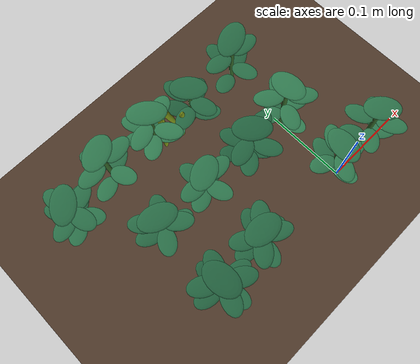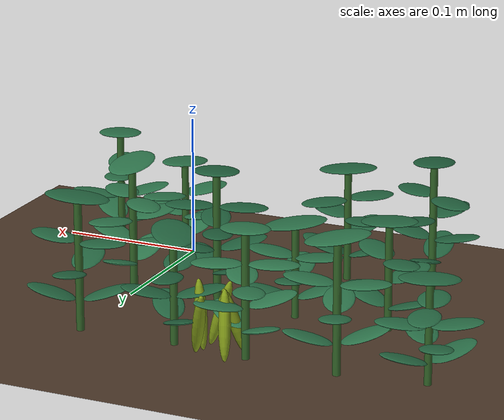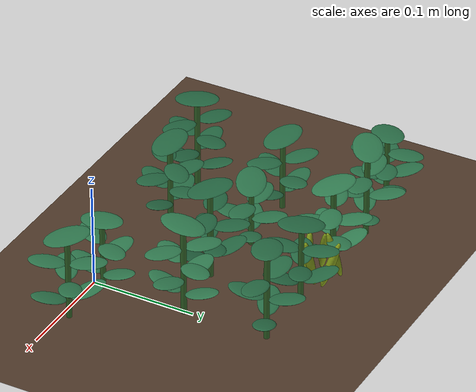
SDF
<sdf version="1.9">
 <world name="jim_field">
  <model name="ground_plane">
   <static>true</static>
   <link name="link">
    <collision name="collision">
     <geometry><plane><normal>0 0 1</normal><size>40 40</size></plane></geometry>
    </collision>
    <visual name="visual">
     <geometry><plane><normal>0 0 1</normal><size>40 40</size></plane></geometry>
     <material>
      <ambient>0.20 0.15 0.11 1</ambient>
      <diffuse>0.30 0.22 0.16 1</diffuse>
      <specular>0.01 0.01 0.01 1</specular>
     </material>
    </visual>
   </link>
  </model>
  <model name="field">
   <static>true</static>
   <pose>0.1837 -0.2516 0 0 0 0</pose>
   <model name="crop_138">
    <static>true</static>
    <pose>-0.3691 0.2538 0 0 0 0</pose>
    <link name="link">
     <visual name="stem">
      <pose>0 0 0.0440 0 0 0</pose>
      <geometry><cylinder><radius>0.0027</radius><length>0.0880</length></cylinder></geometry>
      <material>
       <ambient>0.10 0.22 0.09 1</ambient>
       <diffuse>0.20 0.40 0.16 1</diffuse>
       <specular>0.05 0.06 0.05 1</specular>
      </material>
     </visual>
     <visual name="leaflet_0_0">
      <pose>-0.0020 0.0186 0.0264 0 -0.300 1.6778</pose>
      <geometry><ellipsoid><radii>0.0170 0.0105 0.0016</radii></ellipsoid></geometry>
      <material>
       <ambient>0.070 0.200 0.110 1</ambient>
       <diffuse>0.130 0.380 0.240 1</diffuse>
       <specular>0.05 0.06 0.05 1</specular>
      </material>
     </visual>
     <visual name="leaflet_0_1">
      <pose>0.0020 -0.0186 0.0264 0 -0.300 4.8194</pose>
      <geometry><ellipsoid><radii>0.0170 0.0105 0.0016</radii></ellipsoid></geometry>
      <material>
       <ambient>0.070 0.200 0.110 1</ambient>
       <diffuse>0.130 0.380 0.240 1</diffuse>
       <specular>0.05 0.06 0.05 1</specular>
      </material>
     </visual>
     <visual name="leaflet_1_0">
      <pose>-0.0186 0.0021 0.0401 0 -0.200 3.0278</pose>
      <geometry><ellipsoid><radii>0.0170 0.0105 0.0016</radii></ellipsoid></geometry>
      <material>
       <ambient>0.070 0.200 0.110 1</ambient>
       <diffuse>0.130 0.380 0.240 1</diffuse>
       <specular>0.05 0.06 0.05 1</specular>
      </material>
     </visual>
     <visual name="leaflet_1_1">
      <pose>0.0186 -0.0021 0.0401 0 -0.200 6.1694</pose>
      <geometry><ellipsoid><radii>0.0170 0.0105 0.0016</radii></ellipsoid></geometry>
      <material>
       <ambient>0.070 0.200 0.110 1</ambient>
       <diffuse>0.130 0.380 0.240 1</diffuse>
       <specular>0.05 0.06 0.05 1</specular>
      </material>
     </visual>
     <visual name="leaflet_2_0">
      <pose>-0.0061 -0.0177 0.0537 0 -0.100 4.3778</pose>
      <geometry><ellipsoid><radii>0.0170 0.0105 0.0016</radii></ellipsoid></geometry>
      <material>
       <ambient>0.070 0.200 0.110 1</ambient>
       <diffuse>0.130 0.380 0.240 1</diffuse>
       <specular>0.05 0.06 0.05 1</specular>
      </material>
     </visual>
     <visual name="leaflet_2_1">
      <pose>0.0061 0.0177 0.0537 0 -0.100 7.5194</pose>
      <geometry><ellipsoid><radii>0.0170 0.0105 0.0016</radii></ellipsoid></geometry>
      <material>
       <ambient>0.070 0.200 0.110 1</ambient>
       <diffuse>0.130 0.380 0.240 1</diffuse>
       <specular>0.05 0.06 0.05 1</specular>
      </material>
     </visual>
     <visual name="leaflet_3_0">
      <pose>0.0159 -0.0099 0.0673 0 0.000 5.7278</pose>
      <geometry><ellipsoid><radii>0.0170 0.0105 0.0016</radii></ellipsoid></geometry>
      <material>
       <ambient>0.070 0.200 0.110 1</ambient>
       <diffuse>0.130 0.380 0.240 1</diffuse>
       <specular>0.05 0.06 0.05 1</specular>
      </material>
     </visual>
     <visual name="leaflet_3_1">
      <pose>-0.0159 0.0099 0.0673 0 0.000 8.8694</pose>
      <geometry><ellipsoid><radii>0.0170 0.0105 0.0016</radii></ellipsoid></geometry>
      <material>
       <ambient>0.070 0.200 0.110 1</ambient>
       <diffuse>0.130 0.380 0.240 1</diffuse>
       <specular>0.05 0.06 0.05 1</specular>
      </material>
     </visual>
     <visual name="leaflet_terminal">
      <pose>0 0 0.0920 0 -0.12 1.6778</pose>
      <geometry><ellipsoid><radii>0.0215 0.0140 0.0018</radii></ellipsoid></geometry>
      <material>
       <ambient>0.070 0.200 0.110 1</ambient>
       <diffuse>0.130 0.380 0.240 1</diffuse>
       <specular>0.05 0.06 0.05 1</specular>
      </material>
     </visual>
    </link>
   </model>
   <model name="crop_139">
    <static>true</static>
    <pose>-0.3077 0.2597 0 0 0 0</pose>
    <link name="link">
     <visual name="stem">
      <pose>0 0 0.0387 0 0 0</pose>
      <geometry><cylinder><radius>0.0026</radius><length>0.0774</length></cylinder></geometry>
      <material>
       <ambient>0.10 0.22 0.09 1</ambient>
       <diffuse>0.20 0.40 0.16 1</diffuse>
       <specular>0.05 0.06 0.05 1</specular>
      </material>
     </visual>
     <visual name="leaflet_0_0">
      <pose>-0.0181 0.0012 0.0232 0 -0.300 3.0749</pose>
      <geometry><ellipsoid><radii>0.0170 0.0105 0.0016</radii></ellipsoid></geometry>
      <material>
       <ambient>0.074 0.207 0.116 1</ambient>
       <diffuse>0.139 0.395 0.250 1</diffuse>
       <specular>0.05 0.06 0.05 1</specular>
      </material>
     </visual>
     <visual name="leaflet_0_1">
      <pose>0.0181 -0.0012 0.0232 0 -0.300 6.2165</pose>
      <geometry><ellipsoid><radii>0.0170 0.0105 0.0016</radii></ellipsoid></geometry>
      <material>
       <ambient>0.074 0.207 0.116 1</ambient>
       <diffuse>0.139 0.395 0.250 1</diffuse>
       <specular>0.05 0.06 0.05 1</specular>
      </material>
     </visual>
     <visual name="leaflet_1_0">
      <pose>-0.0051 -0.0174 0.0352 0 -0.200 4.4249</pose>
      <geometry><ellipsoid><radii>0.0170 0.0105 0.0016</radii></ellipsoid></geometry>
      <material>
       <ambient>0.074 0.207 0.116 1</ambient>
       <diffuse>0.139 0.395 0.250 1</diffuse>
       <specular>0.05 0.06 0.05 1</specular>
      </material>
     </visual>
     <visual name="leaflet_1_1">
      <pose>0.0051 0.0174 0.0352 0 -0.200 7.5665</pose>
      <geometry><ellipsoid><radii>0.0170 0.0105 0.0016</radii></ellipsoid></geometry>
      <material>
       <ambient>0.074 0.207 0.116 1</ambient>
       <diffuse>0.139 0.395 0.250 1</diffuse>
       <specular>0.05 0.06 0.05 1</specular>
      </material>
     </visual>
     <visual name="leaflet_2_0">
      <pose>0.0158 -0.0088 0.0472 0 -0.100 5.7749</pose>
      <geometry><ellipsoid><radii>0.0170 0.0105 0.0016</radii></ellipsoid></geometry>
      <material>
       <ambient>0.074 0.207 0.116 1</ambient>
       <diffuse>0.139 0.395 0.250 1</diffuse>
       <specular>0.05 0.06 0.05 1</specular>
      </material>
     </visual>
     <visual name="leaflet_2_1">
      <pose>-0.0158 0.0088 0.0472 0 -0.100 8.9165</pose>
      <geometry><ellipsoid><radii>0.0170 0.0105 0.0016</radii></ellipsoid></geometry>
      <material>
       <ambient>0.074 0.207 0.116 1</ambient>
       <diffuse>0.139 0.395 0.250 1</diffuse>
       <specular>0.05 0.06 0.05 1</specular>
      </material>
     </visual>
     <visual name="leaflet_3_0">
      <pose>0.0121 0.0135 0.0592 0 0.000 7.1249</pose>
      <geometry><ellipsoid><radii>0.0170 0.0105 0.0016</radii></ellipsoid></geometry>
      <material>
       <ambient>0.074 0.207 0.116 1</ambient>
       <diffuse>0.139 0.395 0.250 1</diffuse>
       <specular>0.05 0.06 0.05 1</specular>
      </material>
     </visual>
     <visual name="leaflet_3_1">
      <pose>-0.0121 -0.0135 0.0592 0 0.000 10.2665</pose>
      <geometry><ellipsoid><radii>0.0170 0.0105 0.0016</radii></ellipsoid></geometry>
      <material>
       <ambient>0.074 0.207 0.116 1</ambient>
       <diffuse>0.139 0.395 0.250 1</diffuse>
       <specular>0.05 0.06 0.05 1</specular>
      </material>
     </visual>
     <visual name="leaflet_terminal">
      <pose>0 0 0.0814 0 -0.12 3.0749</pose>
      <geometry><ellipsoid><radii>0.0215 0.0140 0.0018</radii></ellipsoid></geometry>
      <material>
       <ambient>0.074 0.207 0.116 1</ambient>
       <diffuse>0.139 0.395 0.250 1</diffuse>
       <specular>0.05 0.06 0.05 1</specular>
      </material>
     </visual>
    </link>
   </model>
   <model name="crop_141">
    <static>true</static>
    <pose>-0.1823 0.2617 0 0 0 0</pose>
    <link name="link">
     <visual name="stem">
      <pose>0 0 0.0336 0 0 0</pose>
      <geometry><cylinder><radius>0.0025</radius><length>0.0672</length></cylinder></geometry>
      <material>
       <ambient>0.10 0.22 0.09 1</ambient>
       <diffuse>0.20 0.40 0.16 1</diffuse>
       <specular>0.05 0.06 0.05 1</specular>
      </material>
     </visual>
     <visual name="leaflet_0_0">
      <pose>0.0018 0.0175 0.0201 0 -0.300 1.4668</pose>
      <geometry><ellipsoid><radii>0.0170 0.0105 0.0016</radii></ellipsoid></geometry>
      <material>
       <ambient>0.093 0.239 0.141 1</ambient>
       <diffuse>0.177 0.458 0.294 1</diffuse>
       <specular>0.05 0.06 0.05 1</specular>
      </material>
     </visual>
     <visual name="leaflet_0_1">
      <pose>-0.0018 -0.0175 0.0201 0 -0.300 4.6084</pose>
      <geometry><ellipsoid><radii>0.0170 0.0105 0.0016</radii></ellipsoid></geometry>
      <material>
       <ambient>0.093 0.239 0.141 1</ambient>
       <diffuse>0.177 0.458 0.294 1</diffuse>
       <specular>0.05 0.06 0.05 1</specular>
      </material>
     </visual>
     <visual name="leaflet_1_0">
      <pose>-0.0167 0.0056 0.0340 0 -0.200 2.8168</pose>
      <geometry><ellipsoid><radii>0.0170 0.0105 0.0016</radii></ellipsoid></geometry>
      <material>
       <ambient>0.093 0.239 0.141 1</ambient>
       <diffuse>0.177 0.458 0.294 1</diffuse>
       <specular>0.05 0.06 0.05 1</specular>
      </material>
     </visual>
     <visual name="leaflet_1_1">
      <pose>0.0167 -0.0056 0.0340 0 -0.200 5.9584</pose>
      <geometry><ellipsoid><radii>0.0170 0.0105 0.0016</radii></ellipsoid></geometry>
      <material>
       <ambient>0.093 0.239 0.141 1</ambient>
       <diffuse>0.177 0.458 0.294 1</diffuse>
       <specular>0.05 0.06 0.05 1</specular>
      </material>
     </visual>
     <visual name="leaflet_2_0">
      <pose>-0.0091 -0.0150 0.0479 0 -0.100 4.1668</pose>
      <geometry><ellipsoid><radii>0.0170 0.0105 0.0016</radii></ellipsoid></geometry>
      <material>
       <ambient>0.093 0.239 0.141 1</ambient>
       <diffuse>0.177 0.458 0.294 1</diffuse>
       <specular>0.05 0.06 0.05 1</specular>
      </material>
     </visual>
     <visual name="leaflet_2_1">
      <pose>0.0091 0.0150 0.0479 0 -0.100 7.3084</pose>
      <geometry><ellipsoid><radii>0.0170 0.0105 0.0016</radii></ellipsoid></geometry>
      <material>
       <ambient>0.093 0.239 0.141 1</ambient>
       <diffuse>0.177 0.458 0.294 1</diffuse>
       <specular>0.05 0.06 0.05 1</specular>
      </material>
     </visual>
     <visual name="leaflet_terminal">
      <pose>0 0 0.0712 0 -0.12 1.4668</pose>
      <geometry><ellipsoid><radii>0.0215 0.0140 0.0018</radii></ellipsoid></geometry>
      <material>
       <ambient>0.093 0.239 0.141 1</ambient>
       <diffuse>0.177 0.458 0.294 1</diffuse>
       <specular>0.05 0.06 0.05 1</specular>
      </material>
     </visual>
    </link>
   </model>
   <model name="crop_142">
    <static>true</static>
    <pose>-0.1286 0.2584 0 0 0 0</pose>
    <link name="link">
     <visual name="stem">
      <pose>0 0 0.0406 0 0 0</pose>
      <geometry><cylinder><radius>0.0026</radius><length>0.0812</length></cylinder></geometry>
      <material>
       <ambient>0.10 0.22 0.09 1</ambient>
       <diffuse>0.20 0.40 0.16 1</diffuse>
       <specular>0.05 0.06 0.05 1</specular>
      </material>
     </visual>
     <visual name="leaflet_0_0">
      <pose>-0.0138 0.0120 0.0243 0 -0.300 2.4246</pose>
      <geometry><ellipsoid><radii>0.0170 0.0105 0.0016</radii></ellipsoid></geometry>
      <material>
       <ambient>0.090 0.233 0.137 1</ambient>
       <diffuse>0.170 0.446 0.286 1</diffuse>
       <specular>0.05 0.06 0.05 1</specular>
      </material>
     </visual>
     <visual name="leaflet_0_1">
      <pose>0.0138 -0.0120 0.0243 0 -0.300 5.5662</pose>
      <geometry><ellipsoid><radii>0.0170 0.0105 0.0016</radii></ellipsoid></geometry>
      <material>
       <ambient>0.090 0.233 0.137 1</ambient>
       <diffuse>0.170 0.446 0.286 1</diffuse>
       <specular>0.05 0.06 0.05 1</specular>
      </material>
     </visual>
     <visual name="leaflet_1_0">
      <pose>-0.0148 -0.0108 0.0411 0 -0.200 3.7746</pose>
      <geometry><ellipsoid><radii>0.0170 0.0105 0.0016</radii></ellipsoid></geometry>
      <material>
       <ambient>0.090 0.233 0.137 1</ambient>
       <diffuse>0.170 0.446 0.286 1</diffuse>
       <specular>0.05 0.06 0.05 1</specular>
      </material>
     </visual>
     <visual name="leaflet_1_1">
      <pose>0.0148 0.0108 0.0411 0 -0.200 6.9162</pose>
      <geometry><ellipsoid><radii>0.0170 0.0105 0.0016</radii></ellipsoid></geometry>
      <material>
       <ambient>0.090 0.233 0.137 1</ambient>
       <diffuse>0.170 0.446 0.286 1</diffuse>
       <specular>0.05 0.06 0.05 1</specular>
      </material>
     </visual>
     <visual name="leaflet_2_0">
      <pose>0.0073 -0.0168 0.0579 0 -0.100 5.1246</pose>
      <geometry><ellipsoid><radii>0.0170 0.0105 0.0016</radii></ellipsoid></geometry>
      <material>
       <ambient>0.090 0.233 0.137 1</ambient>
       <diffuse>0.170 0.446 0.286 1</diffuse>
       <specular>0.05 0.06 0.05 1</specular>
      </material>
     </visual>
     <visual name="leaflet_2_1">
      <pose>-0.0073 0.0168 0.0579 0 -0.100 8.2662</pose>
      <geometry><ellipsoid><radii>0.0170 0.0105 0.0016</radii></ellipsoid></geometry>
      <material>
       <ambient>0.090 0.233 0.137 1</ambient>
       <diffuse>0.170 0.446 0.286 1</diffuse>
       <specular>0.05 0.06 0.05 1</specular>
      </material>
     </visual>
     <visual name="leaflet_terminal">
      <pose>0 0 0.0852 0 -0.12 2.4246</pose>
      <geometry><ellipsoid><radii>0.0215 0.0140 0.0018</radii></ellipsoid></geometry>
      <material>
       <ambient>0.090 0.233 0.137 1</ambient>
       <diffuse>0.170 0.446 0.286 1</diffuse>
       <specular>0.05 0.06 0.05 1</specular>
      </material>
     </visual>
    </link>
   </model>
   <model name="crop_155">
    <static>true</static>
    <pose>-0.3711 0.3419 0 0 0 0</pose>
    <link name="link">
     <visual name="stem">
      <pose>0 0 0.0364 0 0 0</pose>
      <geometry><cylinder><radius>0.0026</radius><length>0.0727</length></cylinder></geometry>
      <material>
       <ambient>0.10 0.22 0.09 1</ambient>
       <diffuse>0.20 0.40 0.16 1</diffuse>
       <specular>0.05 0.06 0.05 1</specular>
      </material>
     </visual>
     <visual name="leaflet_0_0">
      <pose>-0.0172 0.0048 0.0218 0 -0.300 2.8689</pose>
      <geometry><ellipsoid><radii>0.0170 0.0105 0.0016</radii></ellipsoid></geometry>
      <material>
       <ambient>0.079 0.215 0.122 1</ambient>
       <diffuse>0.148 0.410 0.261 1</diffuse>
       <specular>0.05 0.06 0.05 1</specular>
      </material>
     </visual>
     <visual name="leaflet_0_1">
      <pose>0.0172 -0.0048 0.0218 0 -0.300 6.0105</pose>
      <geometry><ellipsoid><radii>0.0170 0.0105 0.0016</radii></ellipsoid></geometry>
      <material>
       <ambient>0.079 0.215 0.122 1</ambient>
       <diffuse>0.148 0.410 0.261 1</diffuse>
       <specular>0.05 0.06 0.05 1</specular>
      </material>
     </visual>
     <visual name="leaflet_1_0">
      <pose>-0.0085 -0.0157 0.0368 0 -0.200 4.2189</pose>
      <geometry><ellipsoid><radii>0.0170 0.0105 0.0016</radii></ellipsoid></geometry>
      <material>
       <ambient>0.079 0.215 0.122 1</ambient>
       <diffuse>0.148 0.410 0.261 1</diffuse>
       <specular>0.05 0.06 0.05 1</specular>
      </material>
     </visual>
     <visual name="leaflet_1_1">
      <pose>0.0085 0.0157 0.0368 0 -0.200 7.3605</pose>
      <geometry><ellipsoid><radii>0.0170 0.0105 0.0016</radii></ellipsoid></geometry>
      <material>
       <ambient>0.079 0.215 0.122 1</ambient>
       <diffuse>0.148 0.410 0.261 1</diffuse>
       <specular>0.05 0.06 0.05 1</specular>
      </material>
     </visual>
     <visual name="leaflet_2_0">
      <pose>0.0135 -0.0117 0.0519 0 -0.100 5.5689</pose>
      <geometry><ellipsoid><radii>0.0170 0.0105 0.0016</radii></ellipsoid></geometry>
      <material>
       <ambient>0.079 0.215 0.122 1</ambient>
       <diffuse>0.148 0.410 0.261 1</diffuse>
       <specular>0.05 0.06 0.05 1</specular>
      </material>
     </visual>
     <visual name="leaflet_2_1">
      <pose>-0.0135 0.0117 0.0519 0 -0.100 8.7105</pose>
      <geometry><ellipsoid><radii>0.0170 0.0105 0.0016</radii></ellipsoid></geometry>
      <material>
       <ambient>0.079 0.215 0.122 1</ambient>
       <diffuse>0.148 0.410 0.261 1</diffuse>
       <specular>0.05 0.06 0.05 1</specular>
      </material>
     </visual>
     <visual name="leaflet_terminal">
      <pose>0 0 0.0767 0 -0.12 2.8689</pose>
      <geometry><ellipsoid><radii>0.0215 0.0140 0.0018</radii></ellipsoid></geometry>
      <material>
       <ambient>0.079 0.215 0.122 1</ambient>
       <diffuse>0.148 0.410 0.261 1</diffuse>
       <specular>0.05 0.06 0.05 1</specular>
      </material>
     </visual>
    </link>
   </model>
   <model name="crop_156">
    <static>true</static>
    <pose>-0.3050 0.3449 0 0 0 0</pose>
    <link name="link">
     <visual name="stem">
      <pose>0 0 0.0316 0 0 0</pose>
      <geometry><cylinder><radius>0.0025</radius><length>0.0632</length></cylinder></geometry>
      <material>
       <ambient>0.10 0.22 0.09 1</ambient>
       <diffuse>0.20 0.40 0.16 1</diffuse>
       <specular>0.05 0.06 0.05 1</specular>
      </material>
     </visual>
     <visual name="leaflet_0_0">
      <pose>-0.0156 -0.0076 0.0190 0 -0.300 3.5917</pose>
      <geometry><ellipsoid><radii>0.0170 0.0105 0.0016</radii></ellipsoid></geometry>
      <material>
       <ambient>0.087 0.229 0.133 1</ambient>
       <diffuse>0.164 0.437 0.280 1</diffuse>
       <specular>0.05 0.06 0.05 1</specular>
      </material>
     </visual>
     <visual name="leaflet_0_1">
      <pose>0.0156 0.0076 0.0190 0 -0.300 6.7333</pose>
      <geometry><ellipsoid><radii>0.0170 0.0105 0.0016</radii></ellipsoid></geometry>
      <material>
       <ambient>0.087 0.229 0.133 1</ambient>
       <diffuse>0.164 0.437 0.280 1</diffuse>
       <specular>0.05 0.06 0.05 1</specular>
      </material>
     </visual>
     <visual name="leaflet_1_0">
      <pose>0.0039 -0.0169 0.0320 0 -0.200 4.9417</pose>
      <geometry><ellipsoid><radii>0.0170 0.0105 0.0016</radii></ellipsoid></geometry>
      <material>
       <ambient>0.087 0.229 0.133 1</ambient>
       <diffuse>0.164 0.437 0.280 1</diffuse>
       <specular>0.05 0.06 0.05 1</specular>
      </material>
     </visual>
     <visual name="leaflet_1_1">
      <pose>-0.0039 0.0169 0.0320 0 -0.200 8.0833</pose>
      <geometry><ellipsoid><radii>0.0170 0.0105 0.0016</radii></ellipsoid></geometry>
      <material>
       <ambient>0.087 0.229 0.133 1</ambient>
       <diffuse>0.164 0.437 0.280 1</diffuse>
       <specular>0.05 0.06 0.05 1</specular>
      </material>
     </visual>
     <visual name="leaflet_2_0">
      <pose>0.0174 0.0001 0.0451 0 -0.100 6.2917</pose>
      <geometry><ellipsoid><radii>0.0170 0.0105 0.0016</radii></ellipsoid></geometry>
      <material>
       <ambient>0.087 0.229 0.133 1</ambient>
       <diffuse>0.164 0.437 0.280 1</diffuse>
       <specular>0.05 0.06 0.05 1</specular>
      </material>
     </visual>
     <visual name="leaflet_2_1">
      <pose>-0.0174 -0.0001 0.0451 0 -0.100 9.4333</pose>
      <geometry><ellipsoid><radii>0.0170 0.0105 0.0016</radii></ellipsoid></geometry>
      <material>
       <ambient>0.087 0.229 0.133 1</ambient>
       <diffuse>0.164 0.437 0.280 1</diffuse>
       <specular>0.05 0.06 0.05 1</specular>
      </material>
     </visual>
     <visual name="leaflet_terminal">
      <pose>0 0 0.0672 0 -0.12 3.5917</pose>
      <geometry><ellipsoid><radii>0.0215 0.0140 0.0018</radii></ellipsoid></geometry>
      <material>
       <ambient>0.087 0.229 0.133 1</ambient>
       <diffuse>0.164 0.437 0.280 1</diffuse>
       <specular>0.05 0.06 0.05 1</specular>
      </material>
     </visual>
    </link>
   </model>
   <model name="crop_157">
    <static>true</static>
    <pose>-0.2431 0.3371 0 0 0 0</pose>
    <link name="link">
     <visual name="stem">
      <pose>0 0 0.0447 0 0 0</pose>
      <geometry><cylinder><radius>0.0027</radius><length>0.0893</length></cylinder></geometry>
      <material>
       <ambient>0.10 0.22 0.09 1</ambient>
       <diffuse>0.20 0.40 0.16 1</diffuse>
       <specular>0.05 0.06 0.05 1</specular>
      </material>
     </visual>
     <visual name="leaflet_0_0">
      <pose>-0.0149 0.0114 0.0268 0 -0.300 2.4857</pose>
      <geometry><ellipsoid><radii>0.0170 0.0105 0.0016</radii></ellipsoid></geometry>
      <material>
       <ambient>0.070 0.200 0.110 1</ambient>
       <diffuse>0.130 0.381 0.241 1</diffuse>
       <specular>0.05 0.06 0.05 1</specular>
      </material>
     </visual>
     <visual name="leaflet_0_1">
      <pose>0.0149 -0.0114 0.0268 0 -0.300 5.6273</pose>
      <geometry><ellipsoid><radii>0.0170 0.0105 0.0016</radii></ellipsoid></geometry>
      <material>
       <ambient>0.070 0.200 0.110 1</ambient>
       <diffuse>0.130 0.381 0.241 1</diffuse>
       <specular>0.05 0.06 0.05 1</specular>
      </material>
     </visual>
     <visual name="leaflet_1_0">
      <pose>-0.0144 -0.0120 0.0406 0 -0.200 3.8357</pose>
      <geometry><ellipsoid><radii>0.0170 0.0105 0.0016</radii></ellipsoid></geometry>
      <material>
       <ambient>0.070 0.200 0.110 1</ambient>
       <diffuse>0.130 0.381 0.241 1</diffuse>
       <specular>0.05 0.06 0.05 1</specular>
      </material>
     </visual>
     <visual name="leaflet_1_1">
      <pose>0.0144 0.0120 0.0406 0 -0.200 6.9773</pose>
      <geometry><ellipsoid><radii>0.0170 0.0105 0.0016</radii></ellipsoid></geometry>
      <material>
       <ambient>0.070 0.200 0.110 1</ambient>
       <diffuse>0.130 0.381 0.241 1</diffuse>
       <specular>0.05 0.06 0.05 1</specular>
      </material>
     </visual>
     <visual name="leaflet_2_0">
      <pose>0.0086 -0.0167 0.0545 0 -0.100 5.1857</pose>
      <geometry><ellipsoid><radii>0.0170 0.0105 0.0016</radii></ellipsoid></geometry>
      <material>
       <ambient>0.070 0.200 0.110 1</ambient>
       <diffuse>0.130 0.381 0.241 1</diffuse>
       <specular>0.05 0.06 0.05 1</specular>
      </material>
     </visual>
     <visual name="leaflet_2_1">
      <pose>-0.0086 0.0167 0.0545 0 -0.100 8.3273</pose>
      <geometry><ellipsoid><radii>0.0170 0.0105 0.0016</radii></ellipsoid></geometry>
      <material>
       <ambient>0.070 0.200 0.110 1</ambient>
       <diffuse>0.130 0.381 0.241 1</diffuse>
       <specular>0.05 0.06 0.05 1</specular>
      </material>
     </visual>
     <visual name="leaflet_3_0">
      <pose>0.0182 0.0047 0.0683 0 0.000 6.5357</pose>
      <geometry><ellipsoid><radii>0.0170 0.0105 0.0016</radii></ellipsoid></geometry>
      <material>
       <ambient>0.070 0.200 0.110 1</ambient>
       <diffuse>0.130 0.381 0.241 1</diffuse>
       <specular>0.05 0.06 0.05 1</specular>
      </material>
     </visual>
     <visual name="leaflet_3_1">
      <pose>-0.0182 -0.0047 0.0683 0 0.000 9.6773</pose>
      <geometry><ellipsoid><radii>0.0170 0.0105 0.0016</radii></ellipsoid></geometry>
      <material>
       <ambient>0.070 0.200 0.110 1</ambient>
       <diffuse>0.130 0.381 0.241 1</diffuse>
       <specular>0.05 0.06 0.05 1</specular>
      </material>
     </visual>
     <visual name="leaflet_terminal">
      <pose>0 0 0.0933 0 -0.12 2.4857</pose>
      <geometry><ellipsoid><radii>0.0215 0.0140 0.0018</radii></ellipsoid></geometry>
      <material>
       <ambient>0.070 0.200 0.110 1</ambient>
       <diffuse>0.130 0.381 0.241 1</diffuse>
       <specular>0.05 0.06 0.05 1</specular>
      </material>
     </visual>
    </link>
   </model>
   <model name="crop_158">
    <static>true</static>
    <pose>-0.1823 0.3439 0 0 0 0</pose>
    <link name="link">
     <visual name="stem">
      <pose>0 0 0.0446 0 0 0</pose>
      <geometry><cylinder><radius>0.0027</radius><length>0.0892</length></cylinder></geometry>
      <material>
       <ambient>0.10 0.22 0.09 1</ambient>
       <diffuse>0.20 0.40 0.16 1</diffuse>
       <specular>0.05 0.06 0.05 1</specular>
      </material>
     </visual>
     <visual name="leaflet_0_0">
      <pose>-0.0006 -0.0187 0.0268 0 -0.300 4.6797</pose>
      <geometry><ellipsoid><radii>0.0170 0.0105 0.0016</radii></ellipsoid></geometry>
      <material>
       <ambient>0.095 0.242 0.143 1</ambient>
       <diffuse>0.180 0.463 0.298 1</diffuse>
       <specular>0.05 0.06 0.05 1</specular>
      </material>
     </visual>
     <visual name="leaflet_0_1">
      <pose>0.0006 0.0187 0.0268 0 -0.300 7.8213</pose>
      <geometry><ellipsoid><radii>0.0170 0.0105 0.0016</radii></ellipsoid></geometry>
      <material>
       <ambient>0.095 0.242 0.143 1</ambient>
       <diffuse>0.180 0.463 0.298 1</diffuse>
       <specular>0.05 0.06 0.05 1</specular>
      </material>
     </visual>
     <visual name="leaflet_1_0">
      <pose>0.0182 -0.0047 0.0406 0 -0.200 6.0297</pose>
      <geometry><ellipsoid><radii>0.0170 0.0105 0.0016</radii></ellipsoid></geometry>
      <material>
       <ambient>0.095 0.242 0.143 1</ambient>
       <diffuse>0.180 0.463 0.298 1</diffuse>
       <specular>0.05 0.06 0.05 1</specular>
      </material>
     </visual>
     <visual name="leaflet_1_1">
      <pose>-0.0182 0.0047 0.0406 0 -0.200 9.1713</pose>
      <geometry><ellipsoid><radii>0.0170 0.0105 0.0016</radii></ellipsoid></geometry>
      <material>
       <ambient>0.095 0.242 0.143 1</ambient>
       <diffuse>0.180 0.463 0.298 1</diffuse>
       <specular>0.05 0.06 0.05 1</specular>
      </material>
     </visual>
     <visual name="leaflet_2_0">
      <pose>0.0086 0.0167 0.0544 0 -0.100 7.3797</pose>
      <geometry><ellipsoid><radii>0.0170 0.0105 0.0016</radii></ellipsoid></geometry>
      <material>
       <ambient>0.095 0.242 0.143 1</ambient>
       <diffuse>0.180 0.463 0.298 1</diffuse>
       <specular>0.05 0.06 0.05 1</specular>
      </material>
     </visual>
     <visual name="leaflet_2_1">
      <pose>-0.0086 -0.0167 0.0544 0 -0.100 10.5213</pose>
      <geometry><ellipsoid><radii>0.0170 0.0105 0.0016</radii></ellipsoid></geometry>
      <material>
       <ambient>0.095 0.242 0.143 1</ambient>
       <diffuse>0.180 0.463 0.298 1</diffuse>
       <specular>0.05 0.06 0.05 1</specular>
      </material>
     </visual>
     <visual name="leaflet_3_0">
      <pose>-0.0144 0.0120 0.0682 0 0.000 8.7297</pose>
      <geometry><ellipsoid><radii>0.0170 0.0105 0.0016</radii></ellipsoid></geometry>
      <material>
       <ambient>0.095 0.242 0.143 1</ambient>
       <diffuse>0.180 0.463 0.298 1</diffuse>
       <specular>0.05 0.06 0.05 1</specular>
      </material>
     </visual>
     <visual name="leaflet_3_1">
      <pose>0.0144 -0.0120 0.0682 0 0.000 11.8713</pose>
      <geometry><ellipsoid><radii>0.0170 0.0105 0.0016</radii></ellipsoid></geometry>
      <material>
       <ambient>0.095 0.242 0.143 1</ambient>
       <diffuse>0.180 0.463 0.298 1</diffuse>
       <specular>0.05 0.06 0.05 1</specular>
      </material>
     </visual>
     <visual name="leaflet_terminal">
      <pose>0 0 0.0932 0 -0.12 4.6797</pose>
      <geometry><ellipsoid><radii>0.0215 0.0140 0.0018</radii></ellipsoid></geometry>
      <material>
       <ambient>0.095 0.242 0.143 1</ambient>
       <diffuse>0.180 0.463 0.298 1</diffuse>
       <specular>0.05 0.06 0.05 1</specular>
      </material>
     </visual>
    </link>
   </model>
   <model name="crop_171">
    <static>true</static>
    <pose>-0.4290 0.4196 0 0 0 0</pose>
    <link name="link">
     <visual name="stem">
      <pose>0 0 0.0335 0 0 0</pose>
      <geometry><cylinder><radius>0.0025</radius><length>0.0670</length></cylinder></geometry>
      <material>
       <ambient>0.10 0.22 0.09 1</ambient>
       <diffuse>0.20 0.40 0.16 1</diffuse>
       <specular>0.05 0.06 0.05 1</specular>
      </material>
     </visual>
     <visual name="leaflet_0_0">
      <pose>0.0116 0.0132 0.0201 0 -0.300 0.8520</pose>
      <geometry><ellipsoid><radii>0.0170 0.0105 0.0016</radii></ellipsoid></geometry>
      <material>
       <ambient>0.084 0.223 0.128 1</ambient>
       <diffuse>0.157 0.425 0.272 1</diffuse>
       <specular>0.05 0.06 0.05 1</specular>
      </material>
     </visual>
     <visual name="leaflet_0_1">
      <pose>-0.0116 -0.0132 0.0201 0 -0.300 3.9936</pose>
      <geometry><ellipsoid><radii>0.0170 0.0105 0.0016</radii></ellipsoid></geometry>
      <material>
       <ambient>0.084 0.223 0.128 1</ambient>
       <diffuse>0.157 0.425 0.272 1</diffuse>
       <specular>0.05 0.06 0.05 1</specular>
      </material>
     </visual>
     <visual name="leaflet_1_0">
      <pose>-0.0104 0.0142 0.0305 0 -0.200 2.2020</pose>
      <geometry><ellipsoid><radii>0.0170 0.0105 0.0016</radii></ellipsoid></geometry>
      <material>
       <ambient>0.084 0.223 0.128 1</ambient>
       <diffuse>0.157 0.425 0.272 1</diffuse>
       <specular>0.05 0.06 0.05 1</specular>
      </material>
     </visual>
     <visual name="leaflet_1_1">
      <pose>0.0104 -0.0142 0.0305 0 -0.200 5.3436</pose>
      <geometry><ellipsoid><radii>0.0170 0.0105 0.0016</radii></ellipsoid></geometry>
      <material>
       <ambient>0.084 0.223 0.128 1</ambient>
       <diffuse>0.157 0.425 0.272 1</diffuse>
       <specular>0.05 0.06 0.05 1</specular>
      </material>
     </visual>
     <visual name="leaflet_2_0">
      <pose>-0.0161 -0.0070 0.0409 0 -0.100 3.5520</pose>
      <geometry><ellipsoid><radii>0.0170 0.0105 0.0016</radii></ellipsoid></geometry>
      <material>
       <ambient>0.084 0.223 0.128 1</ambient>
       <diffuse>0.157 0.425 0.272 1</diffuse>
       <specular>0.05 0.06 0.05 1</specular>
      </material>
     </visual>
     <visual name="leaflet_2_1">
      <pose>0.0161 0.0070 0.0409 0 -0.100 6.6936</pose>
      <geometry><ellipsoid><radii>0.0170 0.0105 0.0016</radii></ellipsoid></geometry>
      <material>
       <ambient>0.084 0.223 0.128 1</ambient>
       <diffuse>0.157 0.425 0.272 1</diffuse>
       <specular>0.05 0.06 0.05 1</specular>
      </material>
     </visual>
     <visual name="leaflet_3_0">
      <pose>0.0033 -0.0173 0.0513 0 0.000 4.9020</pose>
      <geometry><ellipsoid><radii>0.0170 0.0105 0.0016</radii></ellipsoid></geometry>
      <material>
       <ambient>0.084 0.223 0.128 1</ambient>
       <diffuse>0.157 0.425 0.272 1</diffuse>
       <specular>0.05 0.06 0.05 1</specular>
      </material>
     </visual>
     <visual name="leaflet_3_1">
      <pose>-0.0033 0.0173 0.0513 0 0.000 8.0436</pose>
      <geometry><ellipsoid><radii>0.0170 0.0105 0.0016</radii></ellipsoid></geometry>
      <material>
       <ambient>0.084 0.223 0.128 1</ambient>
       <diffuse>0.157 0.425 0.272 1</diffuse>
       <specular>0.05 0.06 0.05 1</specular>
      </material>
     </visual>
     <visual name="leaflet_terminal">
      <pose>0 0 0.0710 0 -0.12 0.8520</pose>
      <geometry><ellipsoid><radii>0.0215 0.0140 0.0018</radii></ellipsoid></geometry>
      <material>
       <ambient>0.084 0.223 0.128 1</ambient>
       <diffuse>0.157 0.425 0.272 1</diffuse>
       <specular>0.05 0.06 0.05 1</specular>
      </material>
     </visual>
    </link>
   </model>
   <model name="crop_172">
    <static>true</static>
    <pose>-0.3703 0.4284 0 0 0 0</pose>
    <link name="link">
     <visual name="stem">
      <pose>0 0 0.0442 0 0 0</pose>
      <geometry><cylinder><radius>0.0027</radius><length>0.0884</length></cylinder></geometry>
      <material>
       <ambient>0.10 0.22 0.09 1</ambient>
       <diffuse>0.20 0.40 0.16 1</diffuse>
       <specular>0.05 0.06 0.05 1</specular>
      </material>
     </visual>
     <visual name="leaflet_0_0">
      <pose>-0.0160 -0.0097 0.0265 0 -0.300 3.6885</pose>
      <geometry><ellipsoid><radii>0.0170 0.0105 0.0016</radii></ellipsoid></geometry>
      <material>
       <ambient>0.092 0.236 0.139 1</ambient>
       <diffuse>0.174 0.453 0.291 1</diffuse>
       <specular>0.05 0.06 0.05 1</specular>
      </material>
     </visual>
     <visual name="leaflet_0_1">
      <pose>0.0160 0.0097 0.0265 0 -0.300 6.8301</pose>
      <geometry><ellipsoid><radii>0.0170 0.0105 0.0016</radii></ellipsoid></geometry>
      <material>
       <ambient>0.092 0.236 0.139 1</ambient>
       <diffuse>0.174 0.453 0.291 1</diffuse>
       <specular>0.05 0.06 0.05 1</specular>
      </material>
     </visual>
     <visual name="leaflet_1_0">
      <pose>0.0060 -0.0177 0.0448 0 -0.200 5.0385</pose>
      <geometry><ellipsoid><radii>0.0170 0.0105 0.0016</radii></ellipsoid></geometry>
      <material>
       <ambient>0.092 0.236 0.139 1</ambient>
       <diffuse>0.174 0.453 0.291 1</diffuse>
       <specular>0.05 0.06 0.05 1</specular>
      </material>
     </visual>
     <visual name="leaflet_1_1">
      <pose>-0.0060 0.0177 0.0448 0 -0.200 8.1801</pose>
      <geometry><ellipsoid><radii>0.0170 0.0105 0.0016</radii></ellipsoid></geometry>
      <material>
       <ambient>0.092 0.236 0.139 1</ambient>
       <diffuse>0.174 0.453 0.291 1</diffuse>
       <specular>0.05 0.06 0.05 1</specular>
      </material>
     </visual>
     <visual name="leaflet_2_0">
      <pose>0.0186 0.0020 0.0630 0 -0.100 6.3885</pose>
      <geometry><ellipsoid><radii>0.0170 0.0105 0.0016</radii></ellipsoid></geometry>
      <material>
       <ambient>0.092 0.236 0.139 1</ambient>
       <diffuse>0.174 0.453 0.291 1</diffuse>
       <specular>0.05 0.06 0.05 1</specular>
      </material>
     </visual>
     <visual name="leaflet_2_1">
      <pose>-0.0186 -0.0020 0.0630 0 -0.100 9.5301</pose>
      <geometry><ellipsoid><radii>0.0170 0.0105 0.0016</radii></ellipsoid></geometry>
      <material>
       <ambient>0.092 0.236 0.139 1</ambient>
       <diffuse>0.174 0.453 0.291 1</diffuse>
       <specular>0.05 0.06 0.05 1</specular>
      </material>
     </visual>
     <visual name="leaflet_terminal">
      <pose>0 0 0.0924 0 -0.12 3.6885</pose>
      <geometry><ellipsoid><radii>0.0215 0.0140 0.0018</radii></ellipsoid></geometry>
      <material>
       <ambient>0.092 0.236 0.139 1</ambient>
       <diffuse>0.174 0.453 0.291 1</diffuse>
       <specular>0.05 0.06 0.05 1</specular>
      </material>
     </visual>
    </link>
   </model>
   <model name="crop_173">
    <static>true</static>
    <pose>-0.3061 0.4272 0 0 0 0</pose>
    <link name="link">
     <visual name="stem">
      <pose>0 0 0.0425 0 0 0</pose>
      <geometry><cylinder><radius>0.0027</radius><length>0.0850</length></cylinder></geometry>
      <material>
       <ambient>0.10 0.22 0.09 1</ambient>
       <diffuse>0.20 0.40 0.16 1</diffuse>
       <specular>0.05 0.06 0.05 1</specular>
      </material>
     </visual>
     <visual name="leaflet_0_0">
      <pose>-0.0155 0.0101 0.0255 0 -0.300 2.5630</pose>
      <geometry><ellipsoid><radii>0.0170 0.0105 0.0016</radii></ellipsoid></geometry>
      <material>
       <ambient>0.099 0.248 0.148 1</ambient>
       <diffuse>0.187 0.475 0.307 1</diffuse>
       <specular>0.05 0.06 0.05 1</specular>
      </material>
     </visual>
     <visual name="leaflet_0_1">
      <pose>0.0155 -0.0101 0.0255 0 -0.300 5.7046</pose>
      <geometry><ellipsoid><radii>0.0170 0.0105 0.0016</radii></ellipsoid></geometry>
      <material>
       <ambient>0.099 0.248 0.148 1</ambient>
       <diffuse>0.187 0.475 0.307 1</diffuse>
       <specular>0.05 0.06 0.05 1</specular>
      </material>
     </visual>
     <visual name="leaflet_1_0">
      <pose>-0.0133 -0.0129 0.0387 0 -0.200 3.9130</pose>
      <geometry><ellipsoid><radii>0.0170 0.0105 0.0016</radii></ellipsoid></geometry>
      <material>
       <ambient>0.099 0.248 0.148 1</ambient>
       <diffuse>0.187 0.475 0.307 1</diffuse>
       <specular>0.05 0.06 0.05 1</specular>
      </material>
     </visual>
     <visual name="leaflet_1_1">
      <pose>0.0133 0.0129 0.0387 0 -0.200 7.0546</pose>
      <geometry><ellipsoid><radii>0.0170 0.0105 0.0016</radii></ellipsoid></geometry>
      <material>
       <ambient>0.099 0.248 0.148 1</ambient>
       <diffuse>0.187 0.475 0.307 1</diffuse>
       <specular>0.05 0.06 0.05 1</specular>
      </material>
     </visual>
     <visual name="leaflet_2_0">
      <pose>0.0097 -0.0158 0.0519 0 -0.100 5.2630</pose>
      <geometry><ellipsoid><radii>0.0170 0.0105 0.0016</radii></ellipsoid></geometry>
      <material>
       <ambient>0.099 0.248 0.148 1</ambient>
       <diffuse>0.187 0.475 0.307 1</diffuse>
       <specular>0.05 0.06 0.05 1</specular>
      </material>
     </visual>
     <visual name="leaflet_2_1">
      <pose>-0.0097 0.0158 0.0519 0 -0.100 8.4046</pose>
      <geometry><ellipsoid><radii>0.0170 0.0105 0.0016</radii></ellipsoid></geometry>
      <material>
       <ambient>0.099 0.248 0.148 1</ambient>
       <diffuse>0.187 0.475 0.307 1</diffuse>
       <specular>0.05 0.06 0.05 1</specular>
      </material>
     </visual>
     <visual name="leaflet_3_0">
      <pose>0.0175 0.0060 0.0650 0 0.000 6.6130</pose>
      <geometry><ellipsoid><radii>0.0170 0.0105 0.0016</radii></ellipsoid></geometry>
      <material>
       <ambient>0.099 0.248 0.148 1</ambient>
       <diffuse>0.187 0.475 0.307 1</diffuse>
       <specular>0.05 0.06 0.05 1</specular>
      </material>
     </visual>
     <visual name="leaflet_3_1">
      <pose>-0.0175 -0.0060 0.0650 0 0.000 9.7546</pose>
      <geometry><ellipsoid><radii>0.0170 0.0105 0.0016</radii></ellipsoid></geometry>
      <material>
       <ambient>0.099 0.248 0.148 1</ambient>
       <diffuse>0.187 0.475 0.307 1</diffuse>
       <specular>0.05 0.06 0.05 1</specular>
      </material>
     </visual>
     <visual name="leaflet_terminal">
      <pose>0 0 0.0890 0 -0.12 2.5630</pose>
      <geometry><ellipsoid><radii>0.0215 0.0140 0.0018</radii></ellipsoid></geometry>
      <material>
       <ambient>0.099 0.248 0.148 1</ambient>
       <diffuse>0.187 0.475 0.307 1</diffuse>
       <specular>0.05 0.06 0.05 1</specular>
      </material>
     </visual>
    </link>
   </model>
   <model name="crop_174">
    <static>true</static>
    <pose>-0.2527 0.4232 0 0 0 0</pose>
    <link name="link">
     <visual name="stem">
      <pose>0 0 0.0367 0 0 0</pose>
      <geometry><cylinder><radius>0.0026</radius><length>0.0733</length></cylinder></geometry>
      <material>
       <ambient>0.10 0.22 0.09 1</ambient>
       <diffuse>0.20 0.40 0.16 1</diffuse>
       <specular>0.05 0.06 0.05 1</specular>
      </material>
     </visual>
     <visual name="leaflet_0_0">
      <pose>0.0110 -0.0142 0.0220 0 -0.300 5.3722</pose>
      <geometry><ellipsoid><radii>0.0170 0.0105 0.0016</radii></ellipsoid></geometry>
      <material>
       <ambient>0.073 0.205 0.114 1</ambient>
       <diffuse>0.136 0.390 0.247 1</diffuse>
       <specular>0.05 0.06 0.05 1</specular>
      </material>
     </visual>
     <visual name="leaflet_0_1">
      <pose>-0.0110 0.0142 0.0220 0 -0.300 8.5138</pose>
      <geometry><ellipsoid><radii>0.0170 0.0105 0.0016</radii></ellipsoid></geometry>
      <material>
       <ambient>0.073 0.205 0.114 1</ambient>
       <diffuse>0.136 0.390 0.247 1</diffuse>
       <specular>0.05 0.06 0.05 1</specular>
      </material>
     </visual>
     <visual name="leaflet_1_0">
      <pose>0.0162 0.0076 0.0371 0 -0.200 6.7222</pose>
      <geometry><ellipsoid><radii>0.0170 0.0105 0.0016</radii></ellipsoid></geometry>
      <material>
       <ambient>0.073 0.205 0.114 1</ambient>
       <diffuse>0.136 0.390 0.247 1</diffuse>
       <specular>0.05 0.06 0.05 1</specular>
      </material>
     </visual>
     <visual name="leaflet_1_1">
      <pose>-0.0162 -0.0076 0.0371 0 -0.200 9.8638</pose>
      <geometry><ellipsoid><radii>0.0170 0.0105 0.0016</radii></ellipsoid></geometry>
      <material>
       <ambient>0.073 0.205 0.114 1</ambient>
       <diffuse>0.136 0.390 0.247 1</diffuse>
       <specular>0.05 0.06 0.05 1</specular>
      </material>
     </visual>
     <visual name="leaflet_2_0">
      <pose>-0.0039 0.0175 0.0523 0 -0.100 8.0722</pose>
      <geometry><ellipsoid><radii>0.0170 0.0105 0.0016</radii></ellipsoid></geometry>
      <material>
       <ambient>0.073 0.205 0.114 1</ambient>
       <diffuse>0.136 0.390 0.247 1</diffuse>
       <specular>0.05 0.06 0.05 1</specular>
      </material>
     </visual>
     <visual name="leaflet_2_1">
      <pose>0.0039 -0.0175 0.0523 0 -0.100 11.2138</pose>
      <geometry><ellipsoid><radii>0.0170 0.0105 0.0016</radii></ellipsoid></geometry>
      <material>
       <ambient>0.073 0.205 0.114 1</ambient>
       <diffuse>0.136 0.390 0.247 1</diffuse>
       <specular>0.05 0.06 0.05 1</specular>
      </material>
     </visual>
     <visual name="leaflet_terminal">
      <pose>0 0 0.0773 0 -0.12 5.3722</pose>
      <geometry><ellipsoid><radii>0.0215 0.0140 0.0018</radii></ellipsoid></geometry>
      <material>
       <ambient>0.073 0.205 0.114 1</ambient>
       <diffuse>0.136 0.390 0.247 1</diffuse>
       <specular>0.05 0.06 0.05 1</specular>
      </material>
     </visual>
    </link>
   </model>
   <model name="crop_175">
    <static>true</static>
    <pose>-0.1841 0.4256 0 0 0 0</pose>
    <link name="link">
     <visual name="stem">
      <pose>0 0 0.0447 0 0 0</pose>
      <geometry><cylinder><radius>0.0027</radius><length>0.0893</length></cylinder></geometry>
      <material>
       <ambient>0.10 0.22 0.09 1</ambient>
       <diffuse>0.20 0.40 0.16 1</diffuse>
       <specular>0.05 0.06 0.05 1</specular>
      </material>
     </visual>
     <visual name="leaflet_0_0">
      <pose>0.0174 0.0070 0.0268 0 -0.300 0.3803</pose>
      <geometry><ellipsoid><radii>0.0170 0.0105 0.0016</radii></ellipsoid></geometry>
      <material>
       <ambient>0.078 0.214 0.121 1</ambient>
       <diffuse>0.147 0.408 0.259 1</diffuse>
       <specular>0.05 0.06 0.05 1</specular>
      </material>
     </visual>
     <visual name="leaflet_0_1">
      <pose>-0.0174 -0.0070 0.0268 0 -0.300 3.5218</pose>
      <geometry><ellipsoid><radii>0.0170 0.0105 0.0016</radii></ellipsoid></geometry>
      <material>
       <ambient>0.078 0.214 0.121 1</ambient>
       <diffuse>0.147 0.408 0.259 1</diffuse>
       <specular>0.05 0.06 0.05 1</specular>
      </material>
     </visual>
     <visual name="leaflet_1_0">
      <pose>-0.0030 0.0185 0.0453 0 -0.200 1.7303</pose>
      <geometry><ellipsoid><radii>0.0170 0.0105 0.0016</radii></ellipsoid></geometry>
      <material>
       <ambient>0.078 0.214 0.121 1</ambient>
       <diffuse>0.147 0.408 0.259 1</diffuse>
       <specular>0.05 0.06 0.05 1</specular>
      </material>
     </visual>
     <visual name="leaflet_1_1">
      <pose>0.0030 -0.0185 0.0453 0 -0.200 4.8718</pose>
      <geometry><ellipsoid><radii>0.0170 0.0105 0.0016</radii></ellipsoid></geometry>
      <material>
       <ambient>0.078 0.214 0.121 1</ambient>
       <diffuse>0.147 0.408 0.259 1</diffuse>
       <specular>0.05 0.06 0.05 1</specular>
      </material>
     </visual>
     <visual name="leaflet_2_0">
      <pose>-0.0187 0.0012 0.0637 0 -0.100 3.0803</pose>
      <geometry><ellipsoid><radii>0.0170 0.0105 0.0016</radii></ellipsoid></geometry>
      <material>
       <ambient>0.078 0.214 0.121 1</ambient>
       <diffuse>0.147 0.408 0.259 1</diffuse>
       <specular>0.05 0.06 0.05 1</specular>
      </material>
     </visual>
     <visual name="leaflet_2_1">
      <pose>0.0187 -0.0012 0.0637 0 -0.100 6.2218</pose>
      <geometry><ellipsoid><radii>0.0170 0.0105 0.0016</radii></ellipsoid></geometry>
      <material>
       <ambient>0.078 0.214 0.121 1</ambient>
       <diffuse>0.147 0.408 0.259 1</diffuse>
       <specular>0.05 0.06 0.05 1</specular>
      </material>
     </visual>
     <visual name="leaflet_terminal">
      <pose>0 0 0.0933 0 -0.12 0.3803</pose>
      <geometry><ellipsoid><radii>0.0215 0.0140 0.0018</radii></ellipsoid></geometry>
      <material>
       <ambient>0.078 0.214 0.121 1</ambient>
       <diffuse>0.147 0.408 0.259 1</diffuse>
       <specular>0.05 0.06 0.05 1</specular>
      </material>
     </visual>
    </link>
   </model>
   <model name="weed_far_16">
    <static>true</static>
    <pose>-0.2838 0.4275 0 0 0 0</pose>
    <link name="link">
     <visual name="blade_0">
      <pose>0.0014 -0.0129 0.0237 0.2946 0.0321 4.8211</pose>
      <geometry><ellipsoid><radii>0.0041 0.0041 0.0237</radii></ellipsoid></geometry>
      <material>
       <ambient>0.24 0.30 0.04 1</ambient>
       <diffuse>0.52 0.62 0.10 1</diffuse>
       <specular>0.05 0.06 0.05 1</specular>
      </material>
     </visual>
     <visual name="blade_1">
      <pose>0.0119 -0.0052 0.0237 0.0778 0.1794 5.8738</pose>
      <geometry><ellipsoid><radii>0.0041 0.0041 0.0237</radii></ellipsoid></geometry>
      <material>
       <ambient>0.24 0.30 0.04 1</ambient>
       <diffuse>0.52 0.62 0.10 1</diffuse>
       <specular>0.05 0.06 0.05 1</specular>
      </material>
     </visual>
     <visual name="blade_2">
      <pose>0.0055 0.0118 0.0237 -0.3130 0.1471 7.4146</pose>
      <geometry><ellipsoid><radii>0.0041 0.0041 0.0237</radii></ellipsoid></geometry>
      <material>
       <ambient>0.24 0.30 0.04 1</ambient>
       <diffuse>0.52 0.62 0.10 1</diffuse>
       <specular>0.05 0.06 0.05 1</specular>
      </material>
     </visual>
     <visual name="blade_3">
      <pose>-0.0109 0.0071 0.0237 -0.1501 -0.2309 8.8484</pose>
      <geometry><ellipsoid><radii>0.0041 0.0041 0.0237</radii></ellipsoid></geometry>
      <material>
       <ambient>0.24 0.30 0.04 1</ambient>
       <diffuse>0.52 0.62 0.10 1</diffuse>
       <specular>0.05 0.06 0.05 1</specular>
      </material>
     </visual>
     <visual name="blade_4">
      <pose>-0.0123 -0.0043 0.0237 0.1006 -0.2901 9.7587</pose>
      <geometry><ellipsoid><radii>0.0041 0.0041 0.0237</radii></ellipsoid></geometry>
      <material>
       <ambient>0.24 0.30 0.04 1</ambient>
       <diffuse>0.52 0.62 0.10 1</diffuse>
       <specular>0.05 0.06 0.05 1</specular>
      </material>
     </visual>
    </link>
   </model>
  </model>
 </world>
</sdf>
